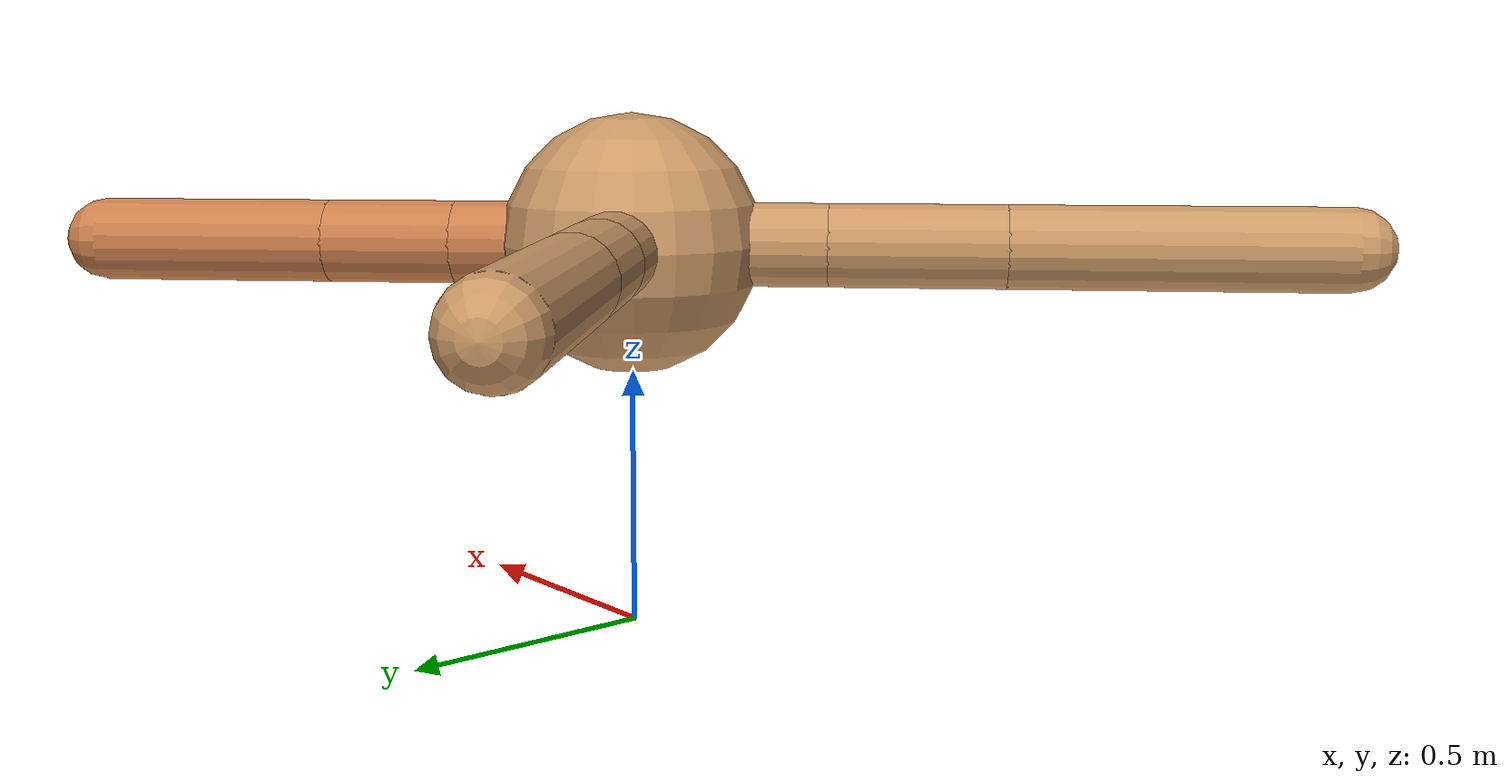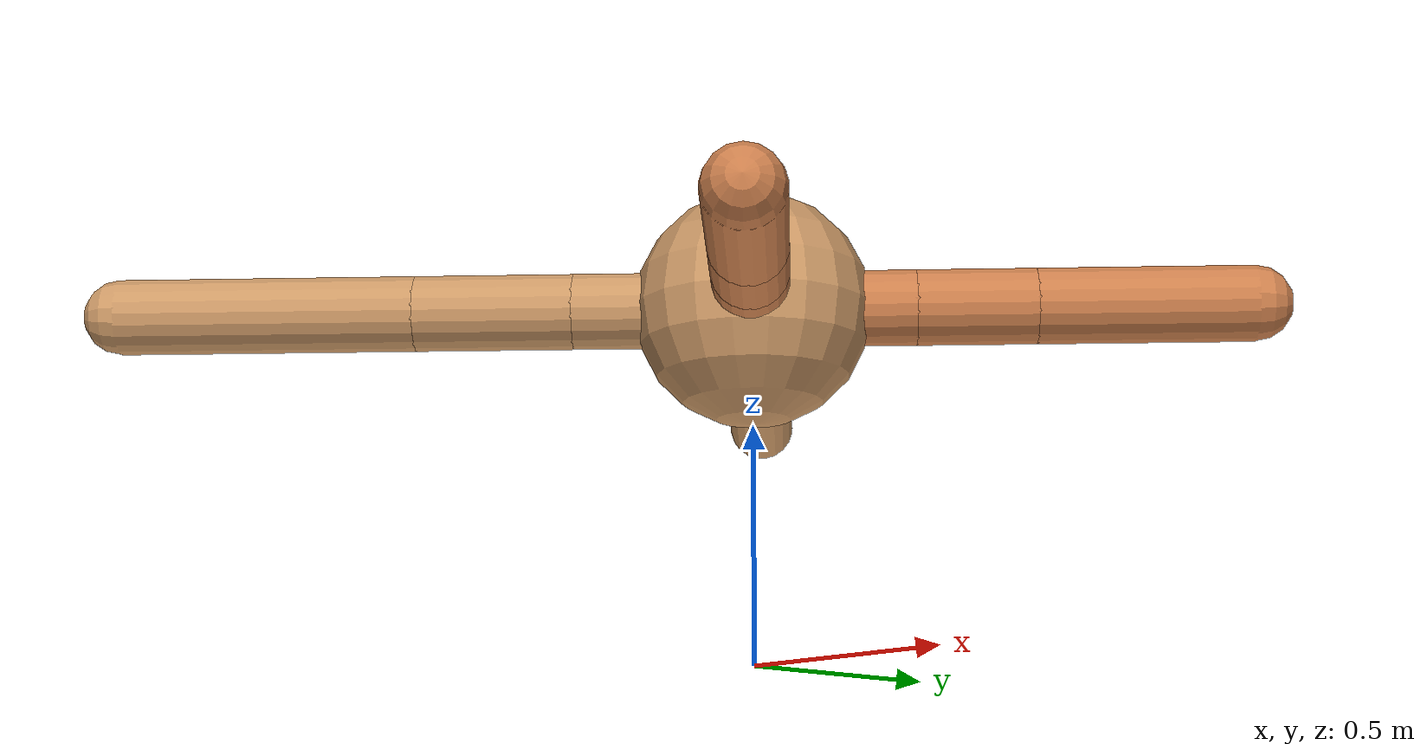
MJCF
<mujoco model="ant">
  <compiler angle="degree" coordinate="local" inertiafromgeom="true" />
  <option integrator="RK4" timestep="0.01" />
  <custom>
    <numeric data="0.0 0.0 0.55 1.0 0.0 0.0 0.0 0.0 1.0 0.0 -1.0 0.0 -1.0 0.0 1.0" name="init_qpos" />
  </custom>
  <default>
    <joint armature="1" damping="1" limited="true" />
    <geom conaffinity="0" condim="3" density="5.0" friction="1.5 0.1 0.1" margin="0.01" rgba="0.8 0.6 0.4 1" />
  </default>
  <worldbody>
    <body name="torso" pos="0 0 0.75">
      <geom name="torso_geom" pos="0 0 0" size="0.25" type="sphere" />

      <body name="front_left_leg" pos="0 0 0">
        <geom fromto="0.0 0.0 0.0 0.24257096061364405 0.24257096061364405 0.0" name="aux_1_geom" size="0.08" type="capsule" rgba=".8 .5 .3 1" />
        <body name="aux_1" pos="0.24257096061364405 0.24257096061364405 0.0">
          <joint axis="0 0 1" name="hip_1" pos="0.0 0.0 0.0" range="-40 40" type="hinge" />
          <geom fromto="0.0 0.0 0.0 0.17669849952186611 0.17669849952186611 0.0" name="left_leg_geom" size="0.08" type="capsule" rgba=".8 .5 .3 1" />
          <body pos="0.17669849952186611 0.17669849952186611 0.0" name="front_left_foot">
            <joint axis="-1 1 0" name="ankle_1" pos="0.0 0.0 0.0" range="30 100" type="hinge" />
            <geom fromto="0.0 0.0 0.0 0.31959423735765413 0.31959423735765413 0.0" name="left_ankle_geom" size="0.08" type="capsule" rgba=".8 .5 .3 1" />
          </body>
        </body>
      </body>
      <body name="front_right_leg" pos="0 0 0">
        <geom fromto="0.0 0.0 0.0 -0.28039330932862383 0.28039330932862383 0.0" name="aux_2_geom" size="0.08" type="capsule" />
        <body name="aux_2" pos="-0.28039330932862383 0.28039330932862383 0.0">
          <joint axis="0 0 1" name="hip_2" pos="0.0 0.0 0.0" range="-40 40" type="hinge" />
          <geom fromto="0.0 0.0 0.0 -0.1863368325195939 0.1863368325195939 0.0" name="right_leg_geom" size="0.08" type="capsule" />
          <body pos="-0.1863368325195939 0.1863368325195939 0.0" name="front_right_foot">
            <joint axis="1 1 0" name="ankle_2" pos="0.0 0.0 0.0" range="-100 -30" type="hinge" />
            <geom fromto="0.0 0.0 0.0 -0.38893596879136577 0.38893596879136577 0.0" name="right_ankle_geom" size="0.08" type="capsule" />
          </body>
        </body>
      </body>
      <body name="left_back_leg" pos="0 0 0">
        <geom fromto="0.0 0.0 0.0 -0.2671872803749124 -0.2671872803749124 0.0" name="aux_3_geom" size="0.08" type="capsule" />
        <body name="aux_3" pos="-0.2671872803749124 -0.2671872803749124 0.0">
          <joint axis="0 0 1" name="hip_3" pos="0.0 0.0 0.0" range="-40 40" type="hinge" />
          <geom fromto="0.0 0.0 0.0 -0.23684023980026958 -0.23684023980026958 0.0" name="back_leg_geom" size="0.08" type="capsule" />
          <body pos="-0.23684023980026958 -0.23684023980026958 0.0" name="left_back_foot">
            <joint axis="-1 1 0" name="ankle_3" pos="0.0 0.0 0.0" range="-100 -30" type="hinge" />
            <geom fromto="0.0 0.0 0.0 -0.44701545148694266 -0.44701545148694266 0.0" name="third_ankle_geom" size="0.08" type="capsule" />
          </body>
        </body>
      </body>
      <body name="right_back_leg" pos="0 0 0">
        <geom fromto="0.0 0.0 0.0 0.21101489175517038 -0.21101489175517038 0.0" name="aux_4_geom" size="0.08" type="capsule" rgba=".8 .5 .3 1" />
        <body name="aux_4" pos="0.21101489175517038 -0.21101489175517038 0.0">
          <joint axis="0 0 1" name="hip_4" pos="0.0 0.0 0.0" range="-40 40" type="hinge" />
          <geom fromto="0.0 0.0 0.0 0.12144836760049266 -0.12144836760049266 0.0" name="rightback_leg_geom" size="0.08" type="capsule" rgba=".8 .5 .3 1" />
          <body pos="0.12144836760049266 -0.12144836760049266 0.0" name="right_back_foot">
            <joint axis="1 1 0" name="ankle_4" pos="0.0 0.0 0.0" range="30 100" type="hinge" />
            <geom fromto="0.0 0.0 0.0 0.25709314624402413 -0.25709314624402413 0.0" name="fourth_ankle_geom" size="0.08" type="capsule" rgba=".8 .5 .3 1" />
          </body>
        </body>
      </body>
    </body>
  </worldbody>
  <actuator>
    <motor ctrllimited="true" ctrlrange="-1.0 1.0" joint="hip_4" gear="150" />
    <motor ctrllimited="true" ctrlrange="-1.0 1.0" joint="ankle_4" gear="150" />
    <motor ctrllimited="true" ctrlrange="-1.0 1.0" joint="hip_1" gear="150" />
    <motor ctrllimited="true" ctrlrange="-1.0 1.0" joint="ankle_1" gear="150" />
    <motor ctrllimited="true" ctrlrange="-1.0 1.0" joint="hip_2" gear="150" />
    <motor ctrllimited="true" ctrlrange="-1.0 1.0" joint="ankle_2" gear="150" />
    <motor ctrllimited="true" ctrlrange="-1.0 1.0" joint="hip_3" gear="150" />
    <motor ctrllimited="true" ctrlrange="-1.0 1.0" joint="ankle_3" gear="150" />
  </actuator>
</mujoco>
